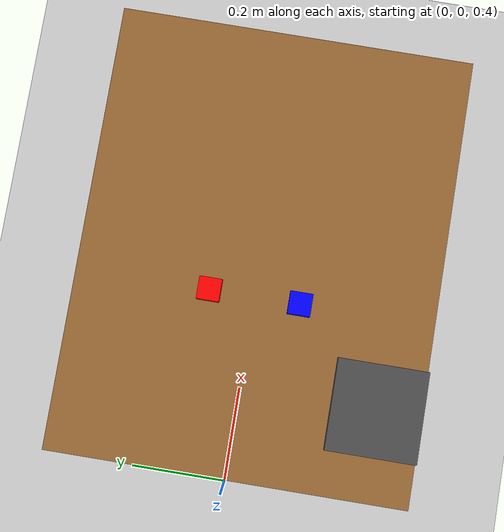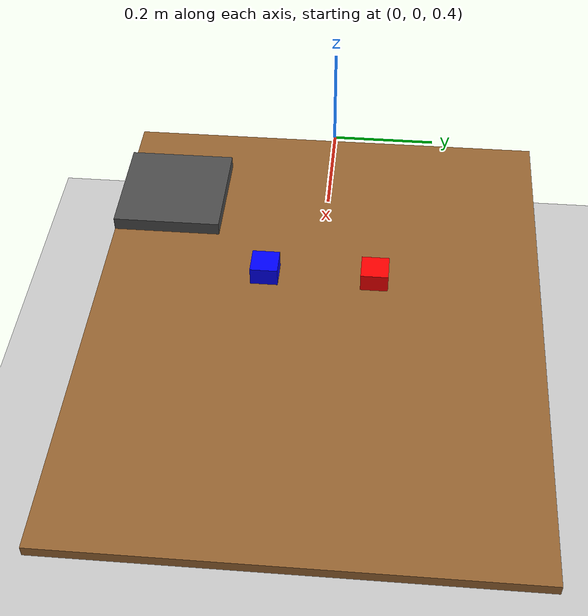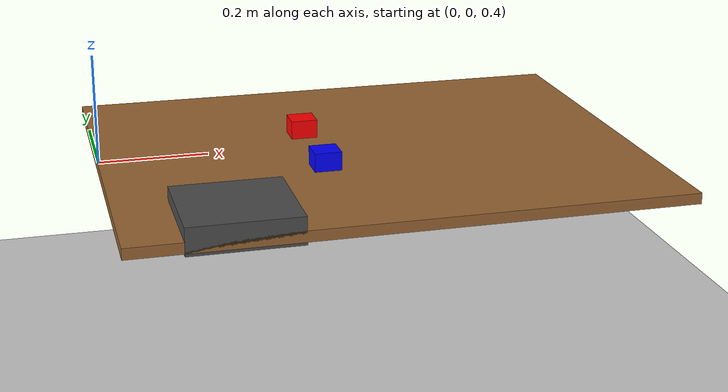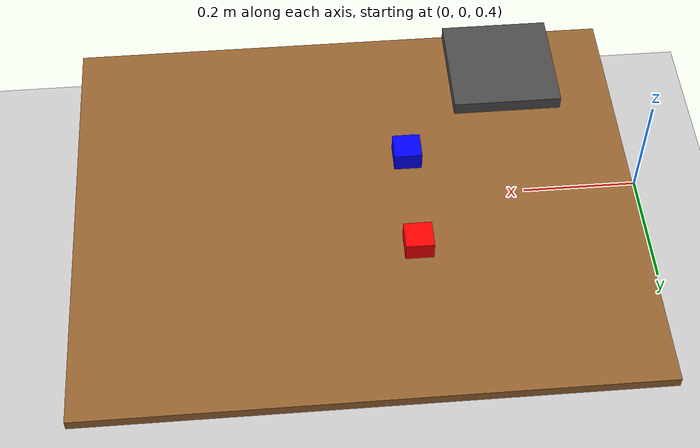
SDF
<?xml version="1.0"?>
<sdf version="1.6">
  <world name="vla_world">

    <!-- Lighting -->
    <include>
      <uri>model://sun</uri>
    </include>

    <!-- Ground plane -->
    <include>
      <uri>model://ground_plane</uri>
    </include>

    <!-- Table -->
    <model name="table">
      <static>true</static>
      <link name="link">
        <collision name="collision">
          <geometry>
            <box><size>1.0 0.8 0.02</size></box>
          </geometry>
        </collision>
        <visual name="visual">
          <geometry>
            <box><size>1.0 0.8 0.02</size></box>
          </geometry>
          <material>
            <ambient>0.6 0.4 0.2 1</ambient>
            <diffuse>0.6 0.4 0.2 1</diffuse>
          </material>
        </visual>
        <pose>0 0 0.38 0 0 0</pose>
      </link>
      <pose>0.5 0 0 0 0 0</pose>
    </model>

    <!-- Red block -->
    <model name="red_block">
      <pose>0.4 0.1 0.40 0 0 0</pose>
      <link name="link">
        <collision name="collision">
          <geometry>
            <box><size>0.05 0.05 0.05</size></box>
          </geometry>
        </collision>
        <visual name="visual">
          <geometry>
            <box><size>0.05 0.05 0.05</size></box>
          </geometry>
          <material>
            <ambient>1 0 0 1</ambient>
            <diffuse>1 0 0 1</diffuse>
          </material>
        </visual>
        <inertial>
          <mass>0.1</mass>
        </inertial>
      </link>
    </model>

    <!-- Blue block -->
    <model name="blue_block">
      <pose>0.4 -0.1 0.40 0 0 0</pose>
      <link name="link">
        <collision name="collision">
          <geometry>
            <box><size>0.05 0.05 0.05</size></box>
          </geometry>
        </collision>
        <visual name="visual">
          <geometry>
            <box><size>0.05 0.05 0.05</size></box>
          </geometry>
          <material>
            <ambient>0 0 1 1</ambient>
            <diffuse>0 0 1 1</diffuse>
          </material>
        </visual>
        <inertial>
          <mass>0.1</mass>
        </inertial>
      </link>
    </model>

    <!-- Bin -->
    <model name="bin">
      <static>true</static>
      <pose>0.2 -0.3 0.39 0 0 0</pose>
      <link name="link">
        <collision name="collision">
          <geometry>
            <box><size>0.2 0.2 0.05</size></box>
          </geometry>
        </collision>
        <visual name="visual">
          <geometry>
            <box><size>0.2 0.2 0.05</size></box>
          </geometry>
          <material>
            <ambient>0.3 0.3 0.3 1</ambient>
            <diffuse>0.3 0.3 0.3 1</diffuse>
          </material>
        </visual>
      </link>
    </model>

  </world>
</sdf>
